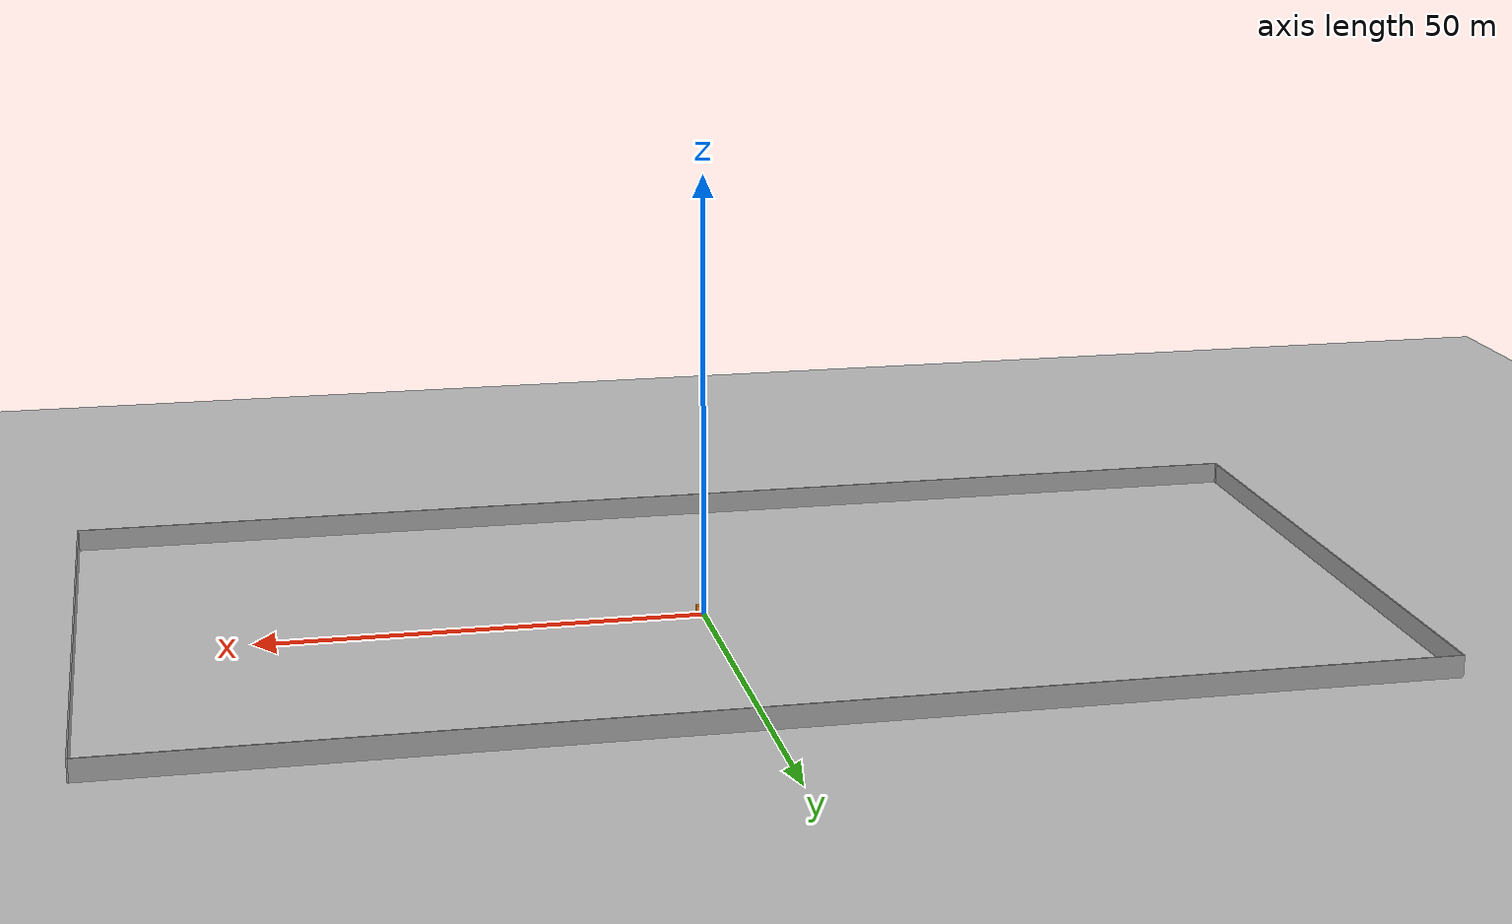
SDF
<sdf version="1.7">
 <world name="default">
  <light name="sun" type="directional">
   <pose>0 0 10 0 -0 0</pose>
   <diffuse>0.8 0.8 0.8 1</diffuse>
   <specular>0.2 0.2 0.2 1</specular>
   <attenuation>
    <range>1000</range>
    <constant>0.9</constant>
    <linear>0.01</linear>
    <quadratic>0.001</quadratic>
   </attenuation>
   <direction>-0.5 0.1 -0.9</direction>
   <spot><inner_angle>0</inner_angle><outer_angle>0</outer_angle><falloff>0</falloff></spot>
  </light>
  <model name="ground_plane">
   <static>1</static>
   <link name="link">
    <collision name="collision">
     <geometry><plane><normal>0 0 1</normal><size>100 100</size></plane></geometry>
     <surface>
      <contact><collide_bitmask>65535</collide_bitmask></contact>
      <friction><ode><mu>100</mu><mu2>50</mu2></ode></friction>
     </surface>
    </collision>
    <visual name="visual">
     <cast_shadows>0</cast_shadows>
     <geometry><plane><normal>0 0 1</normal><size>100 100</size></plane></geometry>
     <material>
      <script><uri>file://media/materials/scripts/gazebo.material</uri><name>Gazebo/Grey</name></script>
     </material>
    </visual>
   </link>
  </model>
  <gravity>0 0 -9.8</gravity>
  <magnetic_field>6e-06 2.3e-05 -4.2e-05</magnetic_field>
  <atmosphere type="adiabatic"/>
  <physics type="ode">
   <max_step_size>0.001</max_step_size>
   <real_time_factor>1</real_time_factor>
   <real_time_update_rate>1000</real_time_update_rate>
  </physics>
  <scene><ambient>0.4 0.4 0.4 1</ambient><background>0.7 0.7 0.7 1</background><shadows>1</shadows></scene>
  <audio><device>default</device></audio>
  <spherical_coordinates>
   <surface_model>EARTH_WGS84</surface_model>
   <latitude_deg>0</latitude_deg>
   <longitude_deg>0</longitude_deg>
   <elevation>0</elevation>
   <heading_deg>0</heading_deg>
  </spherical_coordinates>
  <model name="test_walls">
   <pose>-2.82371 -1.09825 0 0 -0 0</pose>
   <link name="Wall_4">
    <collision name="Wall_4_Collision">
     <geometry><box><size>73 0.15 2.5</size></box></geometry>
     <pose>0 0 1.25 0 -0 0</pose>
    </collision>
    <visual name="Wall_4_Visual">
     <pose>0 0 1.25 0 -0 0</pose>
     <geometry><box><size>73 0.15 2.5</size></box></geometry>
     <material>
      <script><uri>file://media/materials/scripts/gazebo.material</uri><name>Gazebo/Grey</name></script>
      <ambient>1 1 1 1</ambient>
     </material>
     <meta><layer>0</layer></meta>
    </visual>
    <pose>71.925 -1e-06 0 0 -0 1.5708</pose>
   </link>
   <link name="Wall_5">
    <collision name="Wall_5_Collision">
     <geometry><box><size>144 0.15 2.5</size></box></geometry>
     <pose>0 0 1.25 0 -0 0</pose>
    </collision>
    <visual name="Wall_5_Visual">
     <pose>0 0 1.25 0 -0 0</pose>
     <geometry><box><size>144 0.15 2.5</size></box></geometry>
     <material>
      <script><uri>file://media/materials/scripts/gazebo.material</uri><name>Gazebo/Grey</name></script>
      <ambient>1 1 1 1</ambient>
     </material>
     <meta><layer>0</layer></meta>
    </visual>
    <pose>2e-06 36.425 0 0 -0 3.14159</pose>
   </link>
   <link name="Wall_6">
    <collision name="Wall_6_Collision">
     <geometry><box><size>72.5 0.15 2.5</size></box></geometry>
     <pose>0 0 1.25 0 -0 0</pose>
    </collision>
    <visual name="Wall_6_Visual">
     <pose>0 0 1.25 0 -0 0</pose>
     <geometry><box><size>72.5 0.15 2.5</size></box></geometry>
     <material>
      <script><uri>file://media/materials/scripts/gazebo.material</uri><name>Gazebo/Grey</name></script>
      <ambient>1 1 1 1</ambient>
     </material>
     <meta><layer>0</layer></meta>
    </visual>
    <pose>-71.925 0.249999 0 0 -0 -1.5708</pose>
   </link>
   <link name="Wall_8">
    <collision name="Wall_8_Collision">
     <geometry><box><size>144 0.15 2.5</size></box></geometry>
     <pose>0 0 1.25 0 -0 0</pose>
    </collision>
    <visual name="Wall_8_Visual">
     <pose>0 0 1.25 0 -0 0</pose>
     <geometry><box><size>144 0.15 2.5</size></box></geometry>
     <material>
      <script><uri>file://media/materials/scripts/gazebo.material</uri><name>Gazebo/Grey</name></script>
      <ambient>1 1 1 1</ambient>
     </material>
     <meta><layer>0</layer></meta>
    </visual>
    <pose>2e-06 -36.425 0 0 -0 3.14159</pose>
   </link>
   <link name="Wall_9">
    <collision name="Wall_9_Collision">
     <geometry><box><size>0.65 0.15 2.5</size></box></geometry>
     <pose>0 0 1.25 0 -0 0</pose>
    </collision>
    <visual name="Wall_9_Visual">
     <pose>0 0 1.25 0 -0 0</pose>
     <geometry><box><size>0.65 0.15 2.5</size></box></geometry>
     <material>
      <script><uri>file://media/materials/scripts/gazebo.material</uri><name>Gazebo/Grey</name></script>
      <ambient>1 1 1 1</ambient>
     </material>
     <meta><layer>0</layer></meta>
    </visual>
    <pose>-71.925 -36.175 0 0 -0 1.5708</pose>
   </link>
   <static>1</static>
  </model>
  <model name="slam_landmark">
   <static>1</static>
   <pose>0.5 -0.5 0 0 -0 0</pose>
   <link name="link">
    <collision name="collision">
     <geometry><box><size>0.5 0.5 1.0</size></box></geometry>
     <pose>0 0 0.5 0 -0 0</pose>
    </collision>
    <visual name="visual">
     <pose>0 0 0.5 0 -0 0</pose>
     <geometry><box><size>0.5 0.5 1.0</size></box></geometry>
     <material>
      <script><uri>file://media/materials/scripts/gazebo.material</uri><name>Gazebo/Orange</name></script>
     </material>
    </visual>
   </link>
  </model>
 </world>
</sdf>
